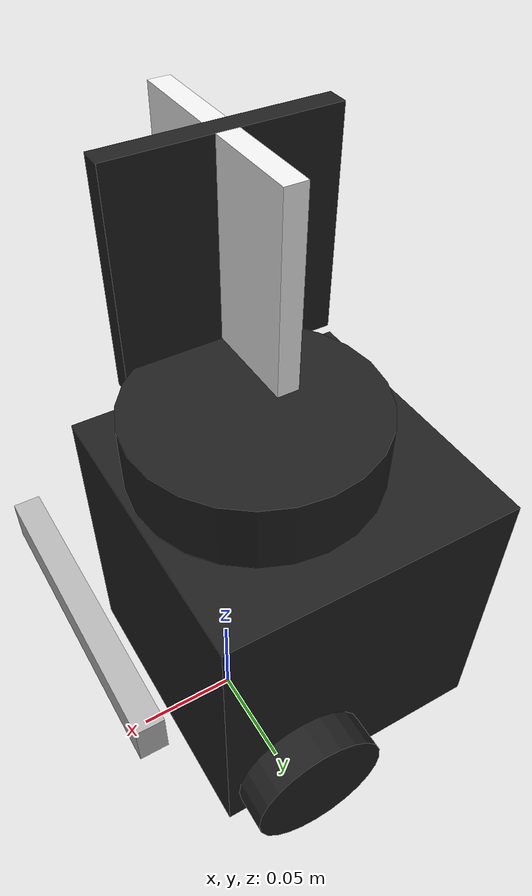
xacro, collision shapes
<?xml version="1.0" ?>
<robot name="turtlebot3_burger_aruco_5" xmlns:xacro="http://ros.org/wiki/xacro">
  <xacro:include filename="$(find dse_turtlebot_descriptions)/urdf/turtlebot3_burger.urdf.xacro"/>
  <gazebo reference="aruco_tag_link">
      <material>Gazebo/FlatBlack</material>
  </gazebo>

  <gazebo reference="aruco_tag_backing_link">
      <material>Gazebo/White</material>
  </gazebo>

  <joint name="aruco_tag_joint" type="fixed">
    <parent link="base_link"/>
    <child link="aruco_tag_link"/>
    <origin xyz="-0.032 0 0.068" rpy="0 0 0"/>
  </joint>

  <link name="aruco_tag_link">
    <collision>
      <origin xyz="0 -0.05 0.15" rpy="1.571 0 1.571"/>
      <geometry>
          <box size="0.01 0.1 0.1" />
      </geometry>
    </collision>

    <visual>
      <origin xyz="0 -0.05 0.15" rpy="1.571 0 1.571"/>
      <geometry>
          <mesh filename="package://dse_turtlebot_descriptions/meshes/aruco/aruco_marker_5.stl" scale="0.001 0.001 0.001"/>
      </geometry>
    </visual>
  </link>

  <joint name="aruco_tag_backing_joint" type="fixed">
    <parent link="base_link"/>
    <child link="aruco_tag_backing_link"/>
    <origin xyz="-0.032 0 0.068" rpy="0 0 0"/>
  </joint>

  <link name="aruco_tag_backing_link">
    <collision>
      <origin xyz="0 -0.05 0.15" rpy="1.571 0 1.571"/>
      <geometry>
          <box size="0.1 0.1 0.01" />
      </geometry>
    </collision>

    <visual>
      <origin xyz="0.0049 -0 0.2" rpy="1.571 0 1.571"/>
      <geometry>
          <box size="0.15 0.15 0.01" />
      </geometry>
    </visual>
  </link>
</robot>

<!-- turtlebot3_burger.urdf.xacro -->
<robot name="turtlebot3_burger" xmlns:xacro="http://ros.org/wiki/xacro">
  <xacro:include filename="$(find dse_turtlebot_descriptions)/urdf/common_properties.xacro"/>
  <xacro:include filename="$(find dse_turtlebot_descriptions)/urdf/turtlebot3_burger.gazebo.xacro"/>

  <xacro:property name="r200_cam_rgb_px" value="0.005"/>
  <xacro:property name="r200_cam_rgb_py" value="0.018"/>
  <xacro:property name="r200_cam_rgb_pz" value="0.013"/>
  <xacro:property name="r200_cam_depth_offset" value="0.01"/>

  <link name="base_footprint"/>

  <joint name="base_joint" type="fixed">
    <parent link="base_footprint"/>
    <child link="base_link"/>
    <origin xyz="0.0 0.0 0.010" rpy="0 0 0"/>
  </joint>

  <link name="base_link">
    <visual>
      <origin xyz="-0.032 0 0.0" rpy="0 0 0"/>
      <geometry>
        <mesh filename="package://turtlebot3_description/meshes/bases/burger_base.stl" scale="0.001 0.001 0.001"/>
      </geometry>
      <material name="light_black"/>
    </visual>

    <collision>
      <origin xyz="-0.032 0 0.070" rpy="0 0 0"/>
      <geometry>
        <box size="0.140 0.140 0.143"/>
      </geometry>
    </collision>

    <inertial>
      <origin xyz="0 0 0" rpy="0 0 0"/>
      <mass value="8.2573504e-01"/>
      <inertia ixx="2.2124416e-03" ixy="-1.2294101e-05" ixz="3.4938785e-05"
               iyy="2.1193702e-03" iyz="-5.0120904e-06"
               izz="2.0064271e-03" />
    </inertial>
  </link>

  <joint name="wheel_left_joint" type="continuous">
    <parent link="base_link"/>
    <child link="wheel_left_link"/>
    <origin xyz="0.0 0.08 0.023" rpy="-1.57 0 0"/>
    <axis xyz="0 0 1"/>
  </joint>

  <link name="wheel_left_link">
    <visual>
      <origin xyz="0 0 0" rpy="1.57 0 0"/>
      <geometry>
        <mesh filename="package://turtlebot3_description/meshes/wheels/left_tire.stl" scale="0.001 0.001 0.001"/>
      </geometry>
      <material name="dark"/>
    </visual>

    <collision>
      <origin xyz="0 0 0" rpy="0 0 0"/>
      <geometry>
        <cylinder length="0.018" radius="0.033"/>
      </geometry>
    </collision>

    <inertial>
      <origin xyz="0 0 0" />
      <mass value="2.8498940e-02" />
      <inertia ixx="1.1175580e-05" ixy="-4.2369783e-11" ixz="-5.9381719e-09"
               iyy="1.1192413e-05" iyz="-1.4400107e-11"
               izz="2.0712558e-05" />
      </inertial>
  </link>

  <joint name="wheel_right_joint" type="continuous">
    <parent link="base_link"/>
    <child link="wheel_right_link"/>
    <origin xyz="0.0 -0.080 0.023" rpy="-1.57 0 0"/>
    <axis xyz="0 0 1"/>
  </joint>

  <link name="wheel_right_link">
    <visual>
      <origin xyz="0 0 0" rpy="1.57 0 0"/>
      <geometry>
        <mesh filename="package://turtlebot3_description/meshes/wheels/right_tire.stl" scale="0.001 0.001 0.001"/>
      </geometry>
      <material name="dark"/>
    </visual>

    <collision>
      <origin xyz="0 0 0" rpy="0 0 0"/>
      <geometry>
        <cylinder length="0.018" radius="0.033"/>
      </geometry>
    </collision>

    <inertial>
      <origin xyz="0 0 0" />
      <mass value="2.8498940e-02" />
      <inertia ixx="1.1175580e-05" ixy="-4.2369783e-11" ixz="-5.9381719e-09"
               iyy="1.1192413e-05" iyz="-1.4400107e-11"
               izz="2.0712558e-05" />
      </inertial>
  </link>

  <joint name="caster_back_joint" type="fixed">
    <parent link="base_link"/>
    <child link="caster_back_link"/>
    <origin xyz="-0.081 0 -0.004" rpy="-1.57 0 0"/>
  </joint>

  <link name="caster_back_link">
    <collision>
      <origin xyz="0 0.001 0" rpy="0 0 0"/>
      <geometry>
        <box size="0.030 0.009 0.020"/>
      </geometry>
    </collision>

    <inertial>
      <origin xyz="0 0 0" />
      <mass value="0.005" />
      <inertia ixx="0.001" ixy="0.0" ixz="0.0"
               iyy="0.001" iyz="0.0"
               izz="0.001" />
    </inertial>
  </link>

  <joint name="imu_joint" type="fixed">
    <parent link="base_link"/>
    <child link="imu_link"/>
    <origin xyz="-0.032 0 0.068" rpy="0 0 0"/>
  </joint>

  <link name="imu_link"/>

  <joint name="scan_joint" type="fixed">
    <parent link="base_link"/>
    <child link="base_scan"/>
    <origin xyz="-0.032 0 0.172" rpy="0 0 0"/>
  </joint>

  <link name="base_scan">
    <visual>
      <origin xyz="0 0 0.0" rpy="0 0 0"/>
      <geometry>
        <mesh filename="package://turtlebot3_description/meshes/sensors/lds.stl" scale="0.001 0.001 0.001"/>
      </geometry>
      <material name="dark"/>
    </visual>

    <collision>
      <origin xyz="0.015 0 -0.0065" rpy="0 0 0"/>
      <geometry>
        <cylinder length="0.0315" radius="0.055"/>
      </geometry>
    </collision>

    <inertial>
      <mass value="0.114" />
      <origin xyz="0 0 0" />
      <inertia ixx="0.001" ixy="0.0" ixz="0.0"
               iyy="0.001" iyz="0.0"
               izz="0.001" />
    </inertial>
  </link>

  <joint name="camera_joint" type="fixed">
    <origin xyz="0.064 -0.065 0.094" rpy="0 0 0"/>
    <parent link="base_link"/>
    <child link="camera_link"/>
  </joint>

  <link name="camera_link">
    <visual>
     <origin xyz="0 0 0" rpy="1.57 0 1.57"/>
      <geometry>
       <mesh filename="package://turtlebot3_description/meshes/sensors/r200.dae" />
      </geometry>
    </visual>
    <collision>
      <origin xyz="0.003 0.065 0.007" rpy="0 0 0"/>
      <geometry>
        <box size="0.012 0.132 0.020"/>
      </geometry>
    </collision>

    <!-- This inertial field needs doesn't contain reliable data!! -->
  </link>

  <joint name="camera_rgb_joint" type="fixed">
    <origin xyz="${r200_cam_rgb_px} ${r200_cam_rgb_py} ${r200_cam_rgb_pz}" rpy="0 0 0"/>
    <parent link="camera_link"/>
    <child link="camera_rgb_frame"/>
  </joint>
  <link name="camera_rgb_frame"/>

  <joint name="camera_rgb_optical_joint" type="fixed">
    <origin xyz="0 0 0" rpy="-1.57 0 -1.57"/>
    <parent link="camera_rgb_frame"/>
    <child link="camera_rgb_optical_frame"/>
  </joint>
  <link name="camera_rgb_optical_frame"/>

  <joint name="camera_depth_joint" type="fixed">
    <origin xyz="${r200_cam_rgb_px} ${r200_cam_rgb_py + r200_cam_depth_offset} ${r200_cam_rgb_pz}" rpy="0 0 0"/>
    <parent link="camera_link"/>
    <child link="camera_depth_frame"/>
  </joint>
  <link name="camera_depth_frame"/>

  <joint name="camera_depth_optical_joint" type="fixed">
    <origin xyz="0 0 0" rpy="-1.57 0 -1.57"/>
    <parent link="camera_depth_frame"/>
    <child link="camera_depth_optical_frame"/>
  </joint>
  <link name="camera_depth_optical_frame"/>

</robot>
